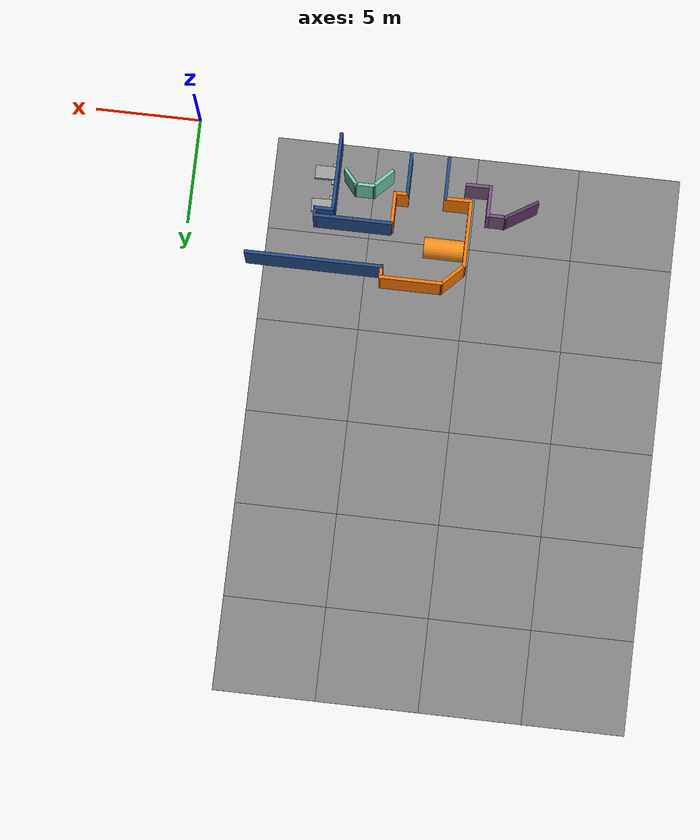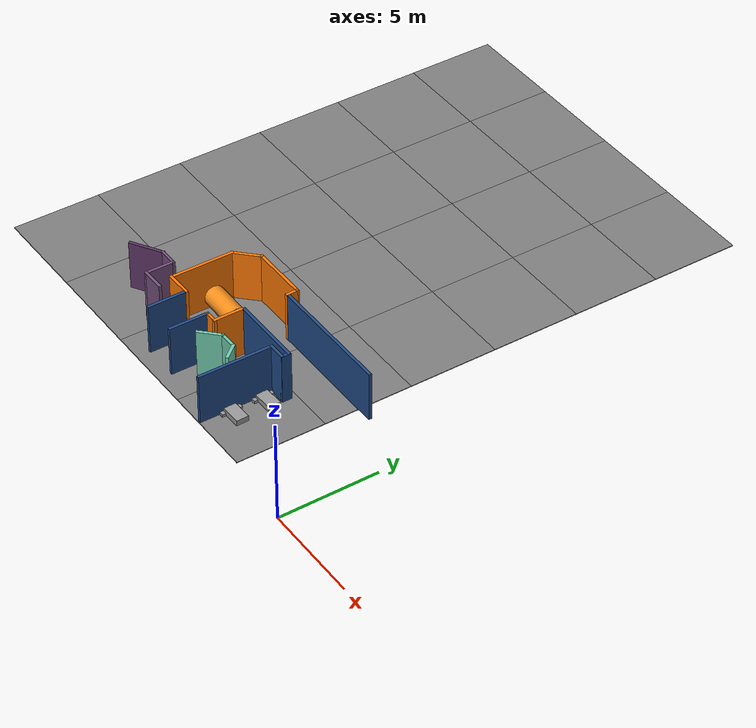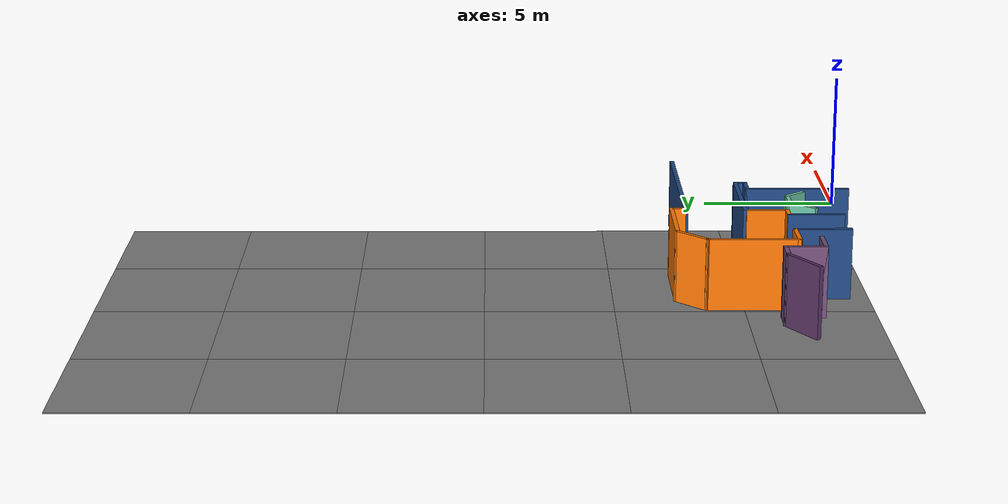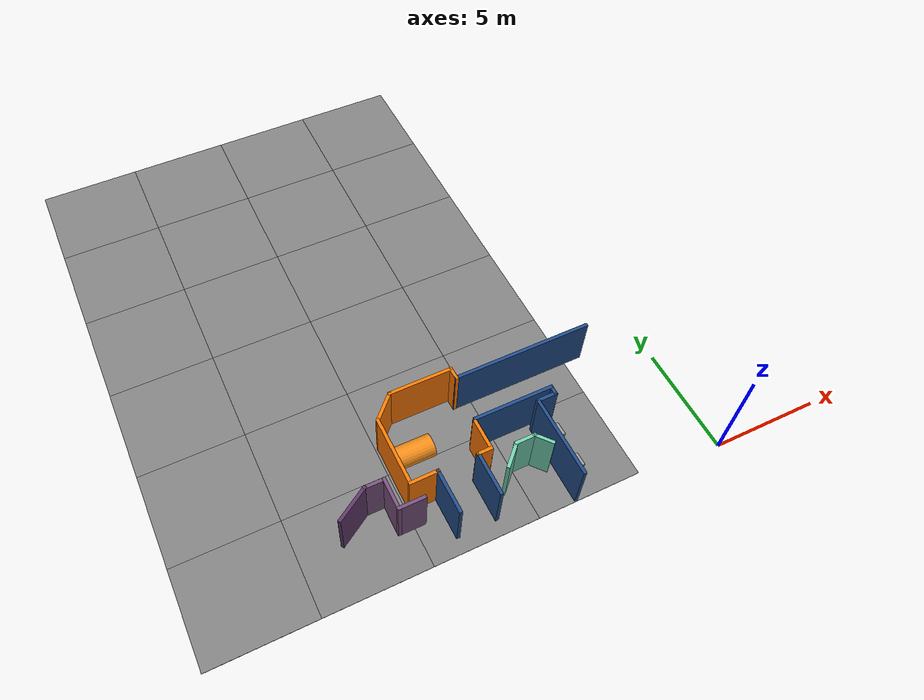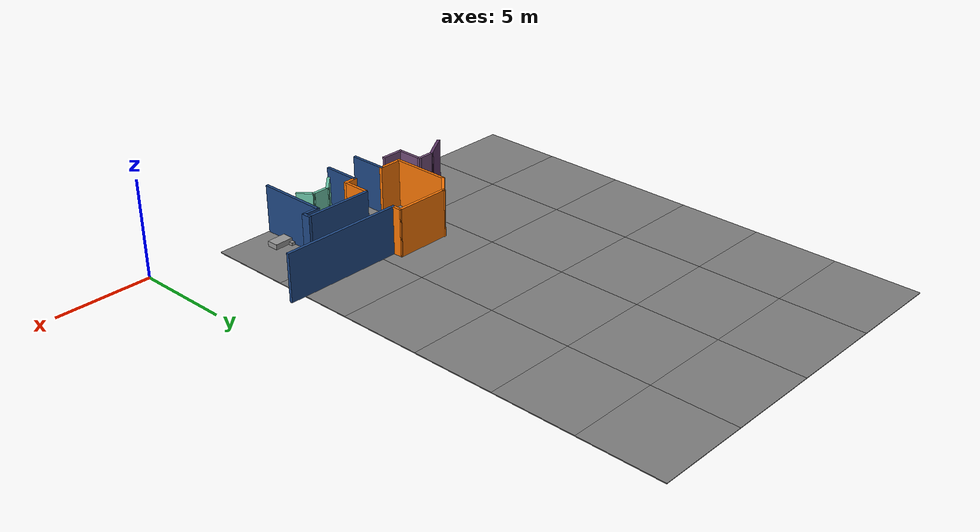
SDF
<sdf version="1.7">
 <world name="default">
  <model name="among_us_world">
   <pose>0.133216 -0.12311 0 0 -0 0</pose>
   <link name="Wall_101">
    <collision name="Wall_101_Collision">
     <geometry><box><size>3.75 0.15 2.5</size></box></geometry>
     <pose>0 0 1.25 0 -0 0</pose>
    </collision>
    <visual name="Wall_101_Visual">
     <pose>0 0 1.25 0 -0 0</pose>
     <geometry><box><size>3.75 0.15 2.5</size></box></geometry>
     <material>
      <ambient>0.12549 0.290196 0.529412 1</ambient>
      <diffuse>0.12549 0.290196 0.529412 1</diffuse>
      <specular>0.08 0.08 0.08 1</specular>
      <emissive>0 0 0 1</emissive>
      <pbr><metal><roughness>0.82</roughness><metalness>0</metalness></metal></pbr>
     </material>
     <meta><layer>0</layer></meta>
    </visual>
    <pose>-6.98451 2.43054 0 0 -0 -1.5708</pose>
   </link>
   <link name="Wall_170">
    <collision name="Wall_170_Collision">
     <geometry><box><size>0.93677 0.15 2.5</size></box></geometry>
     <pose>0 0 1.25 0 -0 0</pose>
    </collision>
    <visual name="Wall_170_Visual">
     <pose>0 0 1.25 0 -0 0</pose>
     <geometry><box><size>0.93677 0.15 2.5</size></box></geometry>
     <material>
      <ambient>0.435294 0.796078 0.67451 1</ambient>
      <diffuse>0.435294 0.796078 0.67451 1</diffuse>
      <specular>0.08 0.08 0.08 1</specular>
      <emissive>0 0 0 1</emissive>
      <pbr><metal><roughness>0.82</roughness><metalness>0</metalness></metal></pbr>
     </material>
     <meta><layer>0</layer></meta>
    </visual>
    <pose>-7.66031 2.59561 0 0 -0 2.2722</pose>
   </link>
   <link name="Wall_171">
    <collision name="Wall_171_Collision">
     <geometry><box><size>1 0.15 2.5</size></box></geometry>
     <pose>0 0 1.25 0 -0 0</pose>
    </collision>
    <visual name="Wall_171_Visual">
     <pose>0 0 1.25 0 -0 0</pose>
     <geometry><box><size>1 0.15 2.5</size></box></geometry>
     <material>
      <ambient>0.435294 0.796078 0.67451 1</ambient>
      <diffuse>0.435294 0.796078 0.67451 1</diffuse>
      <specular>0.08 0.08 0.08 1</specular>
      <emissive>0 0 0 1</emissive>
      <pbr><metal><roughness>0.82</roughness><metalness>0</metalness></metal></pbr>
     </material>
     <meta><layer>0</layer></meta>
    </visual>
    <pose>-8.33916 2.89614 0 0 -0 3.14159</pose>
   </link>
   <link name="Wall_172">
    <collision name="Wall_172_Collision">
     <geometry><box><size>1.25 0.15 2.5</size></box></geometry>
     <pose>0 0 1.25 0 -0 0</pose>
    </collision>
    <visual name="Wall_172_Visual">
     <pose>0 0 1.25 0 -0 0</pose>
     <geometry><box><size>1.25 0.15 2.5</size></box></geometry>
     <material>
      <ambient>0.435294 0.796078 0.67451 1</ambient>
      <diffuse>0.435294 0.796078 0.67451 1</diffuse>
      <specular>0.08 0.08 0.08 1</specular>
      <emissive>0 0 0 1</emissive>
      <pbr><metal><roughness>0.82</roughness><metalness>0</metalness></metal></pbr>
     </material>
     <meta><layer>0</layer></meta>
    </visual>
    <pose>-9.15307 2.50723 0 0 -0 -2.35619</pose>
   </link>
   <link name="Wall_175">
    <collision name="Wall_175_Collision">
     <geometry><box><size>2 0.15 2.5</size></box></geometry>
     <pose>0 0 1.25 0 -0 0</pose>
    </collision>
    <visual name="Wall_175_Visual">
     <pose>0 0 1.25 0 -0 0</pose>
     <geometry><box><size>2 0.15 2.5</size></box></geometry>
     <material>
      <ambient>0.12549 0.290196 0.529412 1</ambient>
      <diffuse>0.12549 0.290196 0.529412 1</diffuse>
      <specular>0.08 0.08 0.08 1</specular>
      <emissive>0 0 0 1</emissive>
      <pbr><metal><roughness>0.82</roughness><metalness>0</metalness></metal></pbr>
     </material>
     <meta><layer>0</layer></meta>
    </visual>
    <pose>-10.3611 2.17994 0 0 -0 1.5708</pose>
   </link>
   <link name="Wall_176">
    <collision name="Wall_176_Collision">
     <geometry><box><size>0.719112 0.15 2.5</size></box></geometry>
     <pose>0 0 1.25 0 -0 0</pose>
    </collision>
    <visual name="Wall_176_Visual">
     <pose>0 0 1.25 0 -0 0</pose>
     <geometry><box><size>0.719112 0.15 2.5</size></box></geometry>
     <material>
      <ambient>0.996078 0.47451 0.0196078 1</ambient>
      <diffuse>0.996078 0.47451 0.0196078 1</diffuse>
      <specular>0.08 0.08 0.08 1</specular>
      <emissive>0 0 0 1</emissive>
      <pbr><metal><roughness>0.82</roughness><metalness>0</metalness></metal></pbr>
     </material>
     <meta><layer>0</layer></meta>
    </visual>
    <pose>-10.0765 3.11832 0 0 -0 0</pose>
   </link>
   <link name="Wall_177">
    <collision name="Wall_177_Collision">
     <geometry><box><size>1.5 0.15 2.5</size></box></geometry>
     <pose>0 0 1.25 0 -0 0</pose>
    </collision>
    <visual name="Wall_177_Visual">
     <pose>0 0 1.25 0 -0 0</pose>
     <geometry><box><size>1.5 0.15 2.5</size></box></geometry>
     <material>
      <ambient>0.996078 0.47451 0.0196078 1</ambient>
      <diffuse>0.996078 0.47451 0.0196078 1</diffuse>
      <specular>0.08 0.08 0.08 1</specular>
      <emissive>0 0 0 1</emissive>
      <pbr><metal><roughness>0.82</roughness><metalness>0</metalness></metal></pbr>
     </material>
     <meta><layer>0</layer></meta>
    </visual>
    <pose>-9.79198 3.79332 0 0 -0 1.5708</pose>
   </link>
   <link name="Wall_31">
    <collision name="Wall_31_Collision">
     <geometry><box><size>6.5 0.15 2.5</size></box></geometry>
     <pose>0 0 1.25 0 -0 0</pose>
    </collision>
    <visual name="Wall_31_Visual">
     <pose>0 0 1.25 0 -0 0</pose>
     <geometry><box><size>6.5 0.15 2.5</size></box></geometry>
     <material>
      <ambient>0.12549 0.290196 0.529412 1</ambient>
      <diffuse>0.12549 0.290196 0.529412 1</diffuse>
      <specular>0.08 0.08 0.08 1</specular>
      <emissive>0 0 0 1</emissive>
      <pbr><metal><roughness>0.82</roughness><metalness>0</metalness></metal></pbr>
     </material>
     <meta><layer>0</layer></meta>
    </visual>
    <pose>-6.36249 6.66662 0 0 -0 3.14159</pose>
   </link>
   <link name="Wall_32">
    <collision name="Wall_32_Collision">
     <geometry><box><size>0.656345 0.15 2.5</size></box></geometry>
     <pose>0 0 1.25 0 -0 0</pose>
    </collision>
    <visual name="Wall_32_Visual">
     <pose>0 0 1.25 0 -0 0</pose>
     <geometry><box><size>0.656345 0.15 2.5</size></box></geometry>
     <material>
      <ambient>0.996078 0.47451 0.0196078 1</ambient>
      <diffuse>0.996078 0.47451 0.0196078 1</diffuse>
      <specular>0.08 0.08 0.08 1</specular>
      <emissive>0 0 0 1</emissive>
      <pbr><metal><roughness>0.82</roughness><metalness>0</metalness></metal></pbr>
     </material>
     <meta><layer>0</layer></meta>
    </visual>
    <pose>-9.54527 6.90412 0 0 -0 1.60153</pose>
   </link>
   <link name="Wall_33">
    <collision name="Wall_33_Collision">
     <geometry><box><size>3 0.15 2.5</size></box></geometry>
     <pose>0 0 1.25 0 -0 0</pose>
    </collision>
    <visual name="Wall_33_Visual">
     <pose>0 0 1.25 0 -0 0</pose>
     <geometry><box><size>3 0.15 2.5</size></box></geometry>
     <material>
      <ambient>0.996078 0.47451 0.0196078 1</ambient>
      <diffuse>0.996078 0.47451 0.0196078 1</diffuse>
      <specular>0.08 0.08 0.08 1</specular>
      <emissive>0 0 0 1</emissive>
      <pbr><metal><roughness>0.82</roughness><metalness>0</metalness></metal></pbr>
     </material>
     <meta><layer>0</layer></meta>
    </visual>
    <pose>-10.978 7.15717 0 0 -0 3.14159</pose>
   </link>
   <link name="Wall_34">
    <collision name="Wall_34_Collision">
     <geometry><box><size>1.5 0.15 2.5</size></box></geometry>
     <pose>0 0 1.25 0 -0 0</pose>
    </collision>
    <visual name="Wall_34_Visual">
     <pose>0 0 1.25 0 -0 0</pose>
     <geometry><box><size>1.5 0.15 2.5</size></box></geometry>
     <material>
      <ambient>0.996078 0.47451 0.0196078 1</ambient>
      <diffuse>0.996078 0.47451 0.0196078 1</diffuse>
      <specular>0.08 0.08 0.08 1</specular>
      <emissive>0 0 0 1</emissive>
      <pbr><metal><roughness>0.82</roughness><metalness>0</metalness></metal></pbr>
     </material>
     <meta><layer>0</layer></meta>
    </visual>
    <pose>-12.8803 6.67987 0 0 -0 -2.35619</pose>
   </link>
   <link name="Wall_35">
    <collision name="Wall_35_Collision">
     <geometry><box><size>3.21889 0.15 2.5</size></box></geometry>
     <pose>0 0 1.25 0 -0 0</pose>
    </collision>
    <visual name="Wall_35_Visual">
     <pose>0 0 1.25 0 -0 0</pose>
     <geometry><box><size>3.21889 0.15 2.5</size></box></geometry>
     <material>
      <ambient>0.996078 0.47451 0.0196078 1</ambient>
      <diffuse>0.996078 0.47451 0.0196078 1</diffuse>
      <specular>0.08 0.08 0.08 1</specular>
      <emissive>0 0 0 1</emissive>
      <pbr><metal><roughness>0.82</roughness><metalness>0</metalness></metal></pbr>
     </material>
     <meta><layer>0</layer></meta>
    </visual>
    <pose>-13.3576 4.66813 0 0 -0 -1.5708</pose>
   </link>
   <link name="Wall_36">
    <collision name="Wall_36_Collision">
     <geometry><box><size>1.35468 0.15 2.5</size></box></geometry>
     <pose>0 0 1.25 0 -0 0</pose>
    </collision>
    <visual name="Wall_36_Visual">
     <pose>0 0 1.25 0 -0 0</pose>
     <geometry><box><size>1.35468 0.15 2.5</size></box></geometry>
     <material>
      <ambient>0.996078 0.47451 0.0196078 1</ambient>
      <diffuse>0.996078 0.47451 0.0196078 1</diffuse>
      <specular>0.08 0.08 0.08 1</specular>
      <emissive>0 0 0 1</emissive>
      <pbr><metal><roughness>0.82</roughness><metalness>0</metalness></metal></pbr>
     </material>
     <meta><layer>0</layer></meta>
    </visual>
    <pose>-12.7556 3.12401 0 0 -0 0.009756</pose>
   </link>
   <link name="Wall_37">
    <collision name="Wall_37_Collision">
     <geometry><box><size>2.0178 0.15 2.5</size></box></geometry>
     <pose>0 0 1.25 0 -0 0</pose>
    </collision>
    <visual name="Wall_37_Visual">
     <pose>0 0 1.25 0 -0 0</pose>
     <geometry><box><size>2.0178 0.15 2.5</size></box></geometry>
     <material>
      <ambient>0.12549 0.290196 0.529412 1</ambient>
      <diffuse>0.12549 0.290196 0.529412 1</diffuse>
      <specular>0.08 0.08 0.08 1</specular>
      <emissive>0 0 0 1</emissive>
      <pbr><metal><roughness>0.82</roughness><metalness>0</metalness></metal></pbr>
     </material>
     <meta><layer>0</layer></meta>
    </visual>
    <pose>-12.1457 2.18046 0 0 -0 -1.56247</pose>
   </link>
   <link name="Wall_40">
    <collision name="Wall_40_Collision">
     <geometry><box><size>1.25 0.15 2.5</size></box></geometry>
     <pose>0 0 1.25 0 -0 0</pose>
    </collision>
    <visual name="Wall_40_Visual">
     <pose>0 0 1.25 0 -0 0</pose>
     <geometry><box><size>1.25 0.15 2.5</size></box></geometry>
     <material>
      <ambient>0.458824 0.313726 0.482353 1</ambient>
      <diffuse>0.458824 0.313726 0.482353 1</diffuse>
      <specular>0.08 0.08 0.08 1</specular>
      <emissive>0 0 0 1</emissive>
      <pbr><metal><roughness>0.82</roughness><metalness>0</metalness></metal></pbr>
     </material>
     <meta><layer>0</layer></meta>
    </visual>
    <pose>-13.6578 2.35272 0 0 -0 3.14159</pose>
   </link>
   <link name="Wall_43">
    <collision name="Wall_43_Collision">
     <geometry><box><size>1.5 0.15 2.5</size></box></geometry>
     <pose>0 0 1.25 0 -0 0</pose>
    </collision>
    <visual name="Wall_43_Visual">
     <pose>0 0 1.25 0 -0 0</pose>
     <geometry><box><size>1.5 0.15 2.5</size></box></geometry>
     <material>
      <ambient>0.458824 0.313726 0.482353 1</ambient>
      <diffuse>0.458824 0.313726 0.482353 1</diffuse>
      <specular>0.08 0.08 0.08 1</specular>
      <emissive>0 0 0 1</emissive>
      <pbr><metal><roughness>0.82</roughness><metalness>0</metalness></metal></pbr>
     </material>
     <meta><layer>0</layer></meta>
    </visual>
    <pose>-14.2078 3.02772 0 0 -0 1.5708</pose>
   </link>
   <link name="Wall_44">
    <collision name="Wall_44_Collision">
     <geometry><box><size>1 0.15 2.5</size></box></geometry>
     <pose>0 0 1.25 0 -0 0</pose>
    </collision>
    <visual name="Wall_44_Visual">
     <pose>0 0 1.25 0 -0 0</pose>
     <geometry><box><size>1 0.15 2.5</size></box></geometry>
     <material>
      <ambient>0.458824 0.313726 0.482353 1</ambient>
      <diffuse>0.458824 0.313726 0.482353 1</diffuse>
      <specular>0.08 0.08 0.08 1</specular>
      <emissive>0 0 0 1</emissive>
      <pbr><metal><roughness>0.82</roughness><metalness>0</metalness></metal></pbr>
     </material>
     <meta><layer>0</layer></meta>
    </visual>
    <pose>-14.6328 3.70272 0 0 -0 3.14159</pose>
   </link>
   <link name="Wall_45">
    <collision name="Wall_45_Collision">
     <geometry><box><size>1.76072 0.15 2.5</size></box></geometry>
     <pose>0 0 1.25 0 -0 0</pose>
    </collision>
    <visual name="Wall_45_Visual">
     <pose>0 0 1.25 0 -0 0</pose>
     <geometry><box><size>1.76072 0.15 2.5</size></box></geometry>
     <material>
      <ambient>0.360784 0.207843 0.4 1</ambient>
      <diffuse>0.360784 0.207843 0.4 1</diffuse>
      <specular>0.08 0.08 0.08 1</specular>
      <emissive>0 0 0 1</emissive>
      <pbr><metal><roughness>0.82</roughness><metalness>0</metalness></metal></pbr>
     </material>
     <meta><layer>0</layer></meta>
    </visual>
    <pose>-15.7428 3.27922 0 0 -0 -2.58786</pose>
   </link>
   <link name="Wall_96">
    <collision name="Wall_96_Collision">
     <geometry><box><size>3.70441 0.15 2.5</size></box></geometry>
     <pose>0 0 1.25 0 -0 0</pose>
    </collision>
    <visual name="Wall_96_Visual">
     <pose>0 0 1.25 0 -0 0</pose>
     <geometry><box><size>3.70441 0.15 2.5</size></box></geometry>
     <material>
      <ambient>0.12549 0.290196 0.529412 1</ambient>
      <diffuse>0.12549 0.290196 0.529412 1</diffuse>
      <specular>0.08 0.08 0.08 1</specular>
      <emissive>0 0 0 1</emissive>
      <pbr><metal><roughness>0.82</roughness><metalness>0</metalness></metal></pbr>
     </material>
     <meta><layer>0</layer></meta>
    </visual>
    <pose>-7.9573 4.58054 0 0 -0 0</pose>
   </link>
   <link name="Wall_97">
    <collision name="Wall_97_Collision">
     <geometry><box><size>0.5 0.15 2.5</size></box></geometry>
     <pose>0 0 1.25 0 -0 0</pose>
    </collision>
    <visual name="Wall_97_Visual">
     <pose>0 0 1.25 0 -0 0</pose>
     <geometry><box><size>0.5 0.15 2.5</size></box></geometry>
     <material>
      <ambient>0.12549 0.290196 0.529412 1</ambient>
      <diffuse>0.12549 0.290196 0.529412 1</diffuse>
      <specular>0.08 0.08 0.08 1</specular>
      <emissive>0 0 0 1</emissive>
      <pbr><metal><roughness>0.82</roughness><metalness>0</metalness></metal></pbr>
     </material>
     <meta><layer>0</layer></meta>
    </visual>
    <pose>-6.16454 4.40555 0 0 -0 -1.5708</pose>
   </link>
   <link name="Wall_98">
    <collision name="Wall_98_Collision">
     <geometry><box><size>0.954414 0.15 2.5</size></box></geometry>
     <pose>0 0 1.25 0 -0 0</pose>
    </collision>
    <visual name="Wall_98_Visual">
     <pose>0 0 1.25 0 -0 0</pose>
     <geometry><box><size>0.954414 0.15 2.5</size></box></geometry>
     <material>
      <ambient>0.12549 0.290196 0.529412 1</ambient>
      <diffuse>0.12549 0.290196 0.529412 1</diffuse>
      <specular>0.08 0.08 0.08 1</specular>
      <emissive>0 0 0 1</emissive>
      <pbr><metal><roughness>0.82</roughness><metalness>0</metalness></metal></pbr>
     </material>
     <meta><layer>0</layer></meta>
    </visual>
    <pose>-6.5823 4.23055 0 0 -0 3.14159</pose>
   </link>
   <static>1</static>
  </model>
  <model name="orange_cylinder_clone">
   <link name="link_0">
    <inertial>
     <mass>1</mass>
     <inertia><ixx>0.145833</ixx><ixy>0</ixy><ixz>0</ixz><iyy>0.145833</iyy><iyz>0</iyz><izz>0.125</izz></inertia>
    </inertial>
    <visual name="visual">
     <geometry><cylinder><radius>0.5</radius><length>1.88443</length></cylinder></geometry>
     <material>
      <lighting>1</lighting>
      <script><uri>file://media/materials/scripts/gazebo.material</uri><name>Gazebo/Orange</name></script>
      <shader type="pixel"><normal_map>__default__</normal_map></shader>
      <ambient>1 0.509 0.047 1</ambient>
      <diffuse>1 0.509 0.047 1</diffuse>
      <specular>0.08 0.08 0.08 1</specular>
      <emissive>0 0 0 1</emissive>
     </material>
    </visual>
    <collision name="collision">
     <geometry><cylinder><radius>0.5</radius><length>1.88443</length></cylinder></geometry>
     <surface>
      <friction>
       <ode><mu>1</mu><mu2>1</mu2><fdir1>0 0 0</fdir1><slip1>0</slip1><slip2>0</slip2></ode>
       <torsional>
        <coefficient>1</coefficient>
        <patch_radius>0</patch_radius>
        <surface_radius>0</surface_radius>
        <use_patch_radius>1</use_patch_radius>
        <ode><slip>0</slip></ode>
       </torsional>
      </friction>
      <bounce><restitution_coefficient>0</restitution_coefficient><threshold>1e+06</threshold></bounce>
      <contact>
       <collide_without_contact>0</collide_without_contact>
       <collide_without_contact_bitmask>1</collide_without_contact_bitmask>
       <collide_bitmask>1</collide_bitmask>
       <ode>
        <soft_cfm>0</soft_cfm>
        <soft_erp>0.2</soft_erp>
        <kp>1e+13</kp>
        <kd>1</kd>
        <max_vel>0.01</max_vel>
        <min_depth>0</min_depth>
       </ode>
       <bullet>
        <split_impulse>1</split_impulse>
        <split_impulse_penetration_threshold>-0.01</split_impulse_penetration_threshold>
        <soft_cfm>0</soft_cfm>
        <soft_erp>0.2</soft_erp>
        <kp>1e+13</kp>
        <kd>1</kd>
       </bullet>
      </contact>
     </surface>
    </collision>
   </link>
   <static>0</static>
   <pose>-12.1912 5.04645 0.590071 -1.5708 1.55143 -1.57632</pose>
  </model>
  <model name="asphalt_tile_04_00">
   <static>1</static>
   <pose>-20.600 2.600 -0.020 0 -0 0</pose>
   <link name="link">
    <collision name="collision"><geometry><box><size>4.800 4.400 0.040</size></box></geometry></collision>
    <visual name="visual">
     <cast_shadows>0</cast_shadows>
     <geometry><box><size>4.800 4.400 0.040</size></box></geometry>
     <material>
      <ambient>0.5 0.5 0.5 1</ambient>
      <diffuse>0.5 0.5 0.5 1</diffuse>
      <specular>0.2 0.2 0.2 1</specular>
      <emissive>0 0 0 1</emissive>
      <pbr>
       <metal>
        <albedo_map>model://asphalt_plane/materials/textures/tarmac.png</albedo_map>
        <roughness>0.85</roughness>
        <metalness>0</metalness>
       </metal>
      </pbr>
     </material>
    </visual>
   </link>
  </model>
  <model name="asphalt_tile_04_01">
   <static>1</static>
   <pose>-15.800 2.600 -0.020 0 -0 0</pose>
   <link name="link">
    <collision name="collision"><geometry><box><size>4.800 4.400 0.040</size></box></geometry></collision>
    <visual name="visual">
     <cast_shadows>0</cast_shadows>
     <geometry><box><size>4.800 4.400 0.040</size></box></geometry>
     <material>
      <ambient>0.5 0.5 0.5 1</ambient>
      <diffuse>0.5 0.5 0.5 1</diffuse>
      <specular>0.2 0.2 0.2 1</specular>
      <emissive>0 0 0 1</emissive>
      <pbr>
       <metal>
        <albedo_map>model://asphalt_plane/materials/textures/tarmac.png</albedo_map>
        <roughness>0.85</roughness>
        <metalness>0</metalness>
       </metal>
      </pbr>
     </material>
    </visual>
   </link>
  </model>
  <model name="asphalt_tile_04_02">
   <static>1</static>
   <pose>-11.000 2.600 -0.020 0 -0 0</pose>
   <link name="link">
    <collision name="collision"><geometry><box><size>4.800 4.400 0.040</size></box></geometry></collision>
    <visual name="visual">
     <cast_shadows>0</cast_shadows>
     <geometry><box><size>4.800 4.400 0.040</size></box></geometry>
     <material>
      <ambient>0.5 0.5 0.5 1</ambient>
      <diffuse>0.5 0.5 0.5 1</diffuse>
      <specular>0.2 0.2 0.2 1</specular>
      <emissive>0 0 0 1</emissive>
      <pbr>
       <metal>
        <albedo_map>model://asphalt_plane/materials/textures/tarmac.png</albedo_map>
        <roughness>0.85</roughness>
        <metalness>0</metalness>
       </metal>
      </pbr>
     </material>
    </visual>
   </link>
  </model>
  <model name="asphalt_tile_04_03">
   <static>1</static>
   <pose>-6.200 2.600 -0.020 0 -0 0</pose>
   <link name="link">
    <collision name="collision"><geometry><box><size>4.800 4.400 0.040</size></box></geometry></collision>
    <visual name="visual">
     <cast_shadows>0</cast_shadows>
     <geometry><box><size>4.800 4.400 0.040</size></box></geometry>
     <material>
      <ambient>0.5 0.5 0.5 1</ambient>
      <diffuse>0.5 0.5 0.5 1</diffuse>
      <specular>0.2 0.2 0.2 1</specular>
      <emissive>0 0 0 1</emissive>
      <pbr>
       <metal>
        <albedo_map>model://asphalt_plane/materials/textures/tarmac.png</albedo_map>
        <roughness>0.85</roughness>
        <metalness>0</metalness>
       </metal>
      </pbr>
     </material>
    </visual>
   </link>
  </model>
  <model name="asphalt_tile_05_00">
   <static>1</static>
   <pose>-20.600 7.000 -0.020 0 -0 0</pose>
   <link name="link">
    <collision name="collision"><geometry><box><size>4.800 4.400 0.040</size></box></geometry></collision>
    <visual name="visual">
     <cast_shadows>0</cast_shadows>
     <geometry><box><size>4.800 4.400 0.040</size></box></geometry>
     <material>
      <ambient>0.5 0.5 0.5 1</ambient>
      <diffuse>0.5 0.5 0.5 1</diffuse>
      <specular>0.2 0.2 0.2 1</specular>
      <emissive>0 0 0 1</emissive>
      <pbr>
       <metal>
        <albedo_map>model://asphalt_plane/materials/textures/tarmac.png</albedo_map>
        <roughness>0.85</roughness>
        <metalness>0</metalness>
       </metal>
      </pbr>
     </material>
    </visual>
   </link>
  </model>
  <model name="asphalt_tile_05_01">
   <static>1</static>
   <pose>-15.800 7.000 -0.020 0 -0 0</pose>
   <link name="link">
    <collision name="collision"><geometry><box><size>4.800 4.400 0.040</size></box></geometry></collision>
    <visual name="visual">
     <cast_shadows>0</cast_shadows>
     <geometry><box><size>4.800 4.400 0.040</size></box></geometry>
     <material>
      <ambient>0.5 0.5 0.5 1</ambient>
      <diffuse>0.5 0.5 0.5 1</diffuse>
      <specular>0.2 0.2 0.2 1</specular>
      <emissive>0 0 0 1</emissive>
      <pbr>
       <metal>
        <albedo_map>model://asphalt_plane/materials/textures/tarmac.png</albedo_map>
        <roughness>0.85</roughness>
        <metalness>0</metalness>
       </metal>
      </pbr>
     </material>
    </visual>
   </link>
  </model>
  <model name="asphalt_tile_05_02">
   <static>1</static>
   <pose>-11.000 7.000 -0.020 0 -0 0</pose>
   <link name="link">
    <collision name="collision"><geometry><box><size>4.800 4.400 0.040</size></box></geometry></collision>
    <visual name="visual">
     <cast_shadows>0</cast_shadows>
     <geometry><box><size>4.800 4.400 0.040</size></box></geometry>
     <material>
      <ambient>0.5 0.5 0.5 1</ambient>
      <diffuse>0.5 0.5 0.5 1</diffuse>
      <specular>0.2 0.2 0.2 1</specular>
      <emissive>0 0 0 1</emissive>
      <pbr>
       <metal>
        <albedo_map>model://asphalt_plane/materials/textures/tarmac.png</albedo_map>
        <roughness>0.85</roughness>
        <metalness>0</metalness>
       </metal>
      </pbr>
     </material>
    </visual>
   </link>
  </model>
  <model name="asphalt_tile_05_03">
   <static>1</static>
   <pose>-6.200 7.000 -0.020 0 -0 0</pose>
   <link name="link">
    <collision name="collision"><geometry><box><size>4.800 4.400 0.040</size></box></geometry></collision>
    <visual name="visual">
     <cast_shadows>0</cast_shadows>
     <geometry><box><size>4.800 4.400 0.040</size></box></geometry>
     <material>
      <ambient>0.5 0.5 0.5 1</ambient>
      <diffuse>0.5 0.5 0.5 1</diffuse>
      <specular>0.2 0.2 0.2 1</specular>
      <emissive>0 0 0 1</emissive>
      <pbr>
       <metal>
        <albedo_map>model://asphalt_plane/materials/textures/tarmac.png</albedo_map>
        <roughness>0.85</roughness>
        <metalness>0</metalness>
       </metal>
      </pbr>
     </material>
    </visual>
   </link>
  </model>
  <model name="asphalt_tile_06_00">
   <static>1</static>
   <pose>-20.600 11.400 -0.020 0 -0 0</pose>
   <link name="link">
    <collision name="collision"><geometry><box><size>4.800 4.400 0.040</size></box></geometry></collision>
    <visual name="visual">
     <cast_shadows>0</cast_shadows>
     <geometry><box><size>4.800 4.400 0.040</size></box></geometry>
     <material>
      <ambient>0.5 0.5 0.5 1</ambient>
      <diffuse>0.5 0.5 0.5 1</diffuse>
      <specular>0.2 0.2 0.2 1</specular>
      <emissive>0 0 0 1</emissive>
      <pbr>
       <metal>
        <albedo_map>model://asphalt_plane/materials/textures/tarmac.png</albedo_map>
        <roughness>0.85</roughness>
        <metalness>0</metalness>
       </metal>
      </pbr>
     </material>
    </visual>
   </link>
  </model>
  <model name="asphalt_tile_06_01">
   <static>1</static>
   <pose>-15.800 11.400 -0.020 0 -0 0</pose>
   <link name="link">
    <collision name="collision"><geometry><box><size>4.800 4.400 0.040</size></box></geometry></collision>
    <visual name="visual">
     <cast_shadows>0</cast_shadows>
     <geometry><box><size>4.800 4.400 0.040</size></box></geometry>
     <material>
      <ambient>0.5 0.5 0.5 1</ambient>
      <diffuse>0.5 0.5 0.5 1</diffuse>
      <specular>0.2 0.2 0.2 1</specular>
      <emissive>0 0 0 1</emissive>
      <pbr>
       <metal>
        <albedo_map>model://asphalt_plane/materials/textures/tarmac.png</albedo_map>
        <roughness>0.85</roughness>
        <metalness>0</metalness>
       </metal>
      </pbr>
     </material>
    </visual>
   </link>
  </model>
  <model name="asphalt_tile_06_02">
   <static>1</static>
   <pose>-11.000 11.400 -0.020 0 -0 0</pose>
   <link name="link">
    <collision name="collision"><geometry><box><size>4.800 4.400 0.040</size></box></geometry></collision>
    <visual name="visual">
     <cast_shadows>0</cast_shadows>
     <geometry><box><size>4.800 4.400 0.040</size></box></geometry>
     <material>
      <ambient>0.5 0.5 0.5 1</ambient>
      <diffuse>0.5 0.5 0.5 1</diffuse>
      <specular>0.2 0.2 0.2 1</specular>
      <emissive>0 0 0 1</emissive>
      <pbr>
       <metal>
        <albedo_map>model://asphalt_plane/materials/textures/tarmac.png</albedo_map>
        <roughness>0.85</roughness>
        <metalness>0</metalness>
       </metal>
      </pbr>
     </material>
    </visual>
   </link>
  </model>
  <model name="asphalt_tile_06_03">
   <static>1</static>
   <pose>-6.200 11.400 -0.020 0 -0 0</pose>
   <link name="link">
    <collision name="collision"><geometry><box><size>4.800 4.400 0.040</size></box></geometry></collision>
    <visual name="visual">
     <cast_shadows>0</cast_shadows>
     <geometry><box><size>4.800 4.400 0.040</size></box></geometry>
     <material>
      <ambient>0.5 0.5 0.5 1</ambient>
      <diffuse>0.5 0.5 0.5 1</diffuse>
      <specular>0.2 0.2 0.2 1</specular>
      <emissive>0 0 0 1</emissive>
      <pbr>
       <metal>
        <albedo_map>model://asphalt_plane/materials/textures/tarmac.png</albedo_map>
        <roughness>0.85</roughness>
        <metalness>0</metalness>
       </metal>
      </pbr>
     </material>
    </visual>
   </link>
  </model>
  <model name="asphalt_tile_07_00">
   <static>1</static>
   <pose>-20.600 15.800 -0.020 0 -0 0</pose>
   <link name="link">
    <collision name="collision"><geometry><box><size>4.800 4.400 0.040</size></box></geometry></collision>
    <visual name="visual">
     <cast_shadows>0</cast_shadows>
     <geometry><box><size>4.800 4.400 0.040</size></box></geometry>
     <material>
      <ambient>0.5 0.5 0.5 1</ambient>
      <diffuse>0.5 0.5 0.5 1</diffuse>
      <specular>0.2 0.2 0.2 1</specular>
      <emissive>0 0 0 1</emissive>
      <pbr>
       <metal>
        <albedo_map>model://asphalt_plane/materials/textures/tarmac.png</albedo_map>
        <roughness>0.85</roughness>
        <metalness>0</metalness>
       </metal>
      </pbr>
     </material>
    </visual>
   </link>
  </model>
  <model name="asphalt_tile_07_01">
   <static>1</static>
   <pose>-15.800 15.800 -0.020 0 -0 0</pose>
   <link name="link">
    <collision name="collision"><geometry><box><size>4.800 4.400 0.040</size></box></geometry></collision>
    <visual name="visual">
     <cast_shadows>0</cast_shadows>
     <geometry><box><size>4.800 4.400 0.040</size></box></geometry>
     <material>
      <ambient>0.5 0.5 0.5 1</ambient>
      <diffuse>0.5 0.5 0.5 1</diffuse>
      <specular>0.2 0.2 0.2 1</specular>
      <emissive>0 0 0 1</emissive>
      <pbr>
       <metal>
        <albedo_map>model://asphalt_plane/materials/textures/tarmac.png</albedo_map>
        <roughness>0.85</roughness>
        <metalness>0</metalness>
       </metal>
      </pbr>
     </material>
    </visual>
   </link>
  </model>
  <model name="asphalt_tile_07_02">
   <static>1</static>
   <pose>-11.000 15.800 -0.020 0 -0 0</pose>
   <link name="link">
    <collision name="collision"><geometry><box><size>4.800 4.400 0.040</size></box></geometry></collision>
    <visual name="visual">
     <cast_shadows>0</cast_shadows>
     <geometry><box><size>4.800 4.400 0.040</size></box></geometry>
     <material>
      <ambient>0.5 0.5 0.5 1</ambient>
      <diffuse>0.5 0.5 0.5 1</diffuse>
      <specular>0.2 0.2 0.2 1</specular>
      <emissive>0 0 0 1</emissive>
      <pbr>
       <metal>
        <albedo_map>model://asphalt_plane/materials/textures/tarmac.png</albedo_map>
        <roughness>0.85</roughness>
        <metalness>0</metalness>
       </metal>
      </pbr>
     </material>
    </visual>
   </link>
  </model>
  <model name="asphalt_tile_07_03">
   <static>1</static>
   <pose>-6.200 15.800 -0.020 0 -0 0</pose>
   <link name="link">
    <collision name="collision"><geometry><box><size>4.800 4.400 0.040</size></box></geometry></collision>
    <visual name="visual">
     <cast_shadows>0</cast_shadows>
     <geometry><box><size>4.800 4.400 0.040</size></box></geometry>
     <material>
      <ambient>0.5 0.5 0.5 1</ambient>
      <diffuse>0.5 0.5 0.5 1</diffuse>
      <specular>0.2 0.2 0.2 1</specular>
      <emissive>0 0 0 1</emissive>
      <pbr>
       <metal>
        <albedo_map>model://asphalt_plane/materials/textures/tarmac.png</albedo_map>
        <roughness>0.85</roughness>
        <metalness>0</metalness>
       </metal>
      </pbr>
     </material>
    </visual>
   </link>
  </model>
  <model name="asphalt_tile_08_00">
   <static>1</static>
   <pose>-20.600 20.200 -0.020 0 -0 0</pose>
   <link name="link">
    <collision name="collision"><geometry><box><size>4.800 4.400 0.040</size></box></geometry></collision>
    <visual name="visual">
     <cast_shadows>0</cast_shadows>
     <geometry><box><size>4.800 4.400 0.040</size></box></geometry>
     <material>
      <ambient>0.5 0.5 0.5 1</ambient>
      <diffuse>0.5 0.5 0.5 1</diffuse>
      <specular>0.2 0.2 0.2 1</specular>
      <emissive>0 0 0 1</emissive>
      <pbr>
       <metal>
        <albedo_map>model://asphalt_plane/materials/textures/tarmac.png</albedo_map>
        <roughness>0.85</roughness>
        <metalness>0</metalness>
       </metal>
      </pbr>
     </material>
    </visual>
   </link>
  </model>
  <model name="asphalt_tile_08_01">
   <static>1</static>
   <pose>-15.800 20.200 -0.020 0 -0 0</pose>
   <link name="link">
    <collision name="collision"><geometry><box><size>4.800 4.400 0.040</size></box></geometry></collision>
    <visual name="visual">
     <cast_shadows>0</cast_shadows>
     <geometry><box><size>4.800 4.400 0.040</size></box></geometry>
     <material>
      <ambient>0.5 0.5 0.5 1</ambient>
      <diffuse>0.5 0.5 0.5 1</diffuse>
      <specular>0.2 0.2 0.2 1</specular>
      <emissive>0 0 0 1</emissive>
      <pbr>
       <metal>
        <albedo_map>model://asphalt_plane/materials/textures/tarmac.png</albedo_map>
        <roughness>0.85</roughness>
        <metalness>0</metalness>
       </metal>
      </pbr>
     </material>
    </visual>
   </link>
  </model>
  <model name="asphalt_tile_08_02">
   <static>1</static>
   <pose>-11.000 20.200 -0.020 0 -0 0</pose>
   <link name="link">
    <collision name="collision"><geometry><box><size>4.800 4.400 0.040</size></box></geometry></collision>
    <visual name="visual">
     <cast_shadows>0</cast_shadows>
     <geometry><box><size>4.800 4.400 0.040</size></box></geometry>
     <material>
      <ambient>0.5 0.5 0.5 1</ambient>
      <diffuse>0.5 0.5 0.5 1</diffuse>
      <specular>0.2 0.2 0.2 1</specular>
      <emissive>0 0 0 1</emissive>
      <pbr>
       <metal>
        <albedo_map>model://asphalt_plane/materials/textures/tarmac.png</albedo_map>
        <roughness>0.85</roughness>
        <metalness>0</metalness>
       </metal>
      </pbr>
     </material>
    </visual>
   </link>
  </model>
  <model name="asphalt_tile_08_03">
   <static>1</static>
   <pose>-6.200 20.200 -0.020 0 -0 0</pose>
   <link name="link">
    <collision name="collision"><geometry><box><size>4.800 4.400 0.040</size></box></geometry></collision>
    <visual name="visual">
     <cast_shadows>0</cast_shadows>
     <geometry><box><size>4.800 4.400 0.040</size></box></geometry>
     <material>
      <ambient>0.5 0.5 0.5 1</ambient>
      <diffuse>0.5 0.5 0.5 1</diffuse>
      <specular>0.2 0.2 0.2 1</specular>
      <emissive>0 0 0 1</emissive>
      <pbr>
       <metal>
        <albedo_map>model://asphalt_plane/materials/textures/tarmac.png</albedo_map>
        <roughness>0.85</roughness>
        <metalness>0</metalness>
       </metal>
      </pbr>
     </material>
    </visual>
   </link>
  </model>
  <model name="asphalt_tile_09_00">
   <static>1</static>
   <pose>-20.600 24.600 -0.020 0 -0 0</pose>
   <link name="link">
    <collision name="collision"><geometry><box><size>4.800 4.400 0.040</size></box></geometry></collision>
    <visual name="visual">
     <cast_shadows>0</cast_shadows>
     <geometry><box><size>4.800 4.400 0.040</size></box></geometry>
     <material>
      <ambient>0.5 0.5 0.5 1</ambient>
      <diffuse>0.5 0.5 0.5 1</diffuse>
      <specular>0.2 0.2 0.2 1</specular>
      <emissive>0 0 0 1</emissive>
      <pbr>
       <metal>
        <albedo_map>model://asphalt_plane/materials/textures/tarmac.png</albedo_map>
        <roughness>0.85</roughness>
        <metalness>0</metalness>
       </metal>
      </pbr>
     </material>
    </visual>
   </link>
  </model>
  <model name="asphalt_tile_09_01">
   <static>1</static>
   <pose>-15.800 24.600 -0.020 0 -0 0</pose>
   <link name="link">
    <collision name="collision"><geometry><box><size>4.800 4.400 0.040</size></box></geometry></collision>
    <visual name="visual">
     <cast_shadows>0</cast_shadows>
     <geometry><box><size>4.800 4.400 0.040</size></box></geometry>
     <material>
      <ambient>0.5 0.5 0.5 1</ambient>
      <diffuse>0.5 0.5 0.5 1</diffuse>
      <specular>0.2 0.2 0.2 1</specular>
      <emissive>0 0 0 1</emissive>
      <pbr>
       <metal>
        <albedo_map>model://asphalt_plane/materials/textures/tarmac.png</albedo_map>
        <roughness>0.85</roughness>
        <metalness>0</metalness>
       </metal>
      </pbr>
     </material>
    </visual>
   </link>
  </model>
  <model name="asphalt_tile_09_02">
   <static>1</static>
   <pose>-11.000 24.600 -0.020 0 -0 0</pose>
   <link name="link">
    <collision name="collision"><geometry><box><size>4.800 4.400 0.040</size></box></geometry></collision>
    <visual name="visual">
     <cast_shadows>0</cast_shadows>
     <geometry><box><size>4.800 4.400 0.040</size></box></geometry>
     <material>
      <ambient>0.5 0.5 0.5 1</ambient>
      <diffuse>0.5 0.5 0.5 1</diffuse>
      <specular>0.2 0.2 0.2 1</specular>
      <emissive>0 0 0 1</emissive>
      <pbr>
       <metal>
        <albedo_map>model://asphalt_plane/materials/textures/tarmac.png</albedo_map>
        <roughness>0.85</roughness>
        <metalness>0</metalness>
       </metal>
      </pbr>
     </material>
    </visual>
   </link>
  </model>
  <model name="asphalt_tile_09_03">
   <static>1</static>
   <pose>-6.200 24.600 -0.020 0 -0 0</pose>
   <link name="link">
    <collision name="collision"><geometry><box><size>4.800 4.400 0.040</size></box></geometry></collision>
    <visual name="visual">
     <cast_shadows>0</cast_shadows>
     <geometry><box><size>4.800 4.400 0.040</size></box></geometry>
     <material>
      <ambient>0.5 0.5 0.5 1</ambient>
      <diffuse>0.5 0.5 0.5 1</diffuse>
      <specular>0.2 0.2 0.2 1</specular>
      <emissive>0 0 0 1</emissive>
      <pbr>
       <metal>
        <albedo_map>model://asphalt_plane/materials/textures/tarmac.png</albedo_map>
        <roughness>0.85</roughness>
        <metalness>0</metalness>
       </metal>
      </pbr>
     </material>
    </visual>
   </link>
  </model>
  <model name="bed">
   <link name="link_1">
    <inertial>
     <mass>0.166557</mass>
     <inertia>
      <ixx>0.00618823</ixx>
      <ixy>0</ixy>
      <ixz>0</ixz>
      <iyy>0.0149173</iyy>
      <iyz>0</iyz>
      <izz>0.0190304</izz>
     </inertia>
    </inertial>
    <pose>0.268517 -0.007523 0.053425 0 -0 0</pose>
    <visual name="visual">
     <geometry><box><size>1 0.609172 0.273416</size></box></geometry>
     <material>
      <lighting>1</lighting>
      <script><uri>file://media/materials/scripts/gazebo.material</uri><name>Gazebo/Grey</name></script>
      <shader type="pixel"><normal_map>__default__</normal_map></shader>
      <ambient>0.42 0.43 0.42 1</ambient>
      <diffuse>0.42 0.43 0.42 1</diffuse>
      <specular>0.08 0.08 0.08 1</specular>
      <emissive>0 0 0 1</emissive>
     </material>
    </visual>
    <collision name="collision">
     <geometry><box><size>1 0.609172 0.273416</size></box></geometry>
     <surface>
      <friction>
       <ode><mu>1</mu><mu2>1</mu2><fdir1>0 0 0</fdir1><slip1>0</slip1><slip2>0</slip2></ode>
       <torsional>
        <coefficient>1</coefficient>
        <patch_radius>0</patch_radius>
        <surface_radius>0</surface_radius>
        <use_patch_radius>1</use_patch_radius>
        <ode><slip>0</slip></ode>
       </torsional>
      </friction>
      <bounce><restitution_coefficient>0</restitution_coefficient><threshold>1e+06</threshold></bounce>
      <contact>
       <collide_without_contact>0</collide_without_contact>
       <collide_without_contact_bitmask>1</collide_without_contact_bitmask>
       <collide_bitmask>1</collide_bitmask>
       <ode>
        <soft_cfm>0</soft_cfm>
        <soft_erp>0.2</soft_erp>
        <kp>1e+13</kp>
        <kd>1</kd>
        <max_vel>0.01</max_vel>
        <min_depth>0</min_depth>
       </ode>
       <bullet>
        <split_impulse>1</split_impulse>
        <split_impulse_penetration_threshold>-0.01</split_impulse_penetration_threshold>
        <soft_cfm>0</soft_cfm>
        <soft_erp>0.2</soft_erp>
        <kp>1e+13</kp>
        <kd>1</kd>
       </bullet>
      </contact>
     </surface>
    </collision>
   </link>
   <link name="link_2">
    <inertial>
     <mass>0.00661892</mass>
     <inertia>
      <ixx>3.651e-05</ixx>
      <ixy>0</ixy>
      <ixz>0</ixz>
      <iyy>3.722e-05</iyy>
      <iyz>0</iyz>
      <izz>4.631e-05</izz>
     </inertia>
    </inertial>
    <pose>-0.144333 -0.400103 -0.02691 0 -0 0</pose>
    <visual name="visual">
     <geometry><box><size>0.206441 0.203314 0.157681</size></box></geometry>
     <material>
      <lighting>1</lighting>
      <script><uri>file://media/materials/scripts/gazebo.material</uri><name>Gazebo/Grey</name></script>
      <shader type="pixel"><normal_map>__default__</normal_map></shader>
      <ambient>0.42 0.43 0.42 1</ambient>
      <diffuse>0.42 0.43 0.42 1</diffuse>
      <specular>0.08 0.08 0.08 1</specular>
      <emissive>0 0 0 1</emissive>
     </material>
    </visual>
    <collision name="collision">
     <geometry><box><size>0.206441 0.203314 0.157681</size></box></geometry>
     <surface>
      <friction>
       <ode><mu>1</mu><mu2>1</mu2><fdir1>0 0 0</fdir1><slip1>0</slip1><slip2>0</slip2></ode>
       <torsional>
        <coefficient>1</coefficient>
        <patch_radius>0</patch_radius>
        <surface_radius>0</surface_radius>
        <use_patch_radius>1</use_patch_radius>
        <ode><slip>0</slip></ode>
       </torsional>
      </friction>
      <bounce><restitution_coefficient>0</restitution_coefficient><threshold>1e+06</threshold></bounce>
      <contact>
       <collide_without_contact>0</collide_without_contact>
       <collide_without_contact_bitmask>1</collide_without_contact_bitmask>
       <collide_bitmask>1</collide_bitmask>
       <ode>
        <soft_cfm>0</soft_cfm>
        <soft_erp>0.2</soft_erp>
        <kp>1e+13</kp>
        <kd>1</kd>
        <max_vel>0.01</max_vel>
        <min_depth>0</min_depth>
       </ode>
       <bullet>
        <split_impulse>1</split_impulse>
        <split_impulse_penetration_threshold>-0.01</split_impulse_penetration_threshold>
        <soft_cfm>0</soft_cfm>
        <soft_erp>0.2</soft_erp>
        <kp>1e+13</kp>
        <kd>1</kd>
       </bullet>
      </contact>
     </surface>
    </collision>
   </link>
   <link name="link_2_clone">
    <inertial>
     <mass>0.00661892</mass>
     <inertia>
      <ixx>3.651e-05</ixx>
      <ixy>0</ixy>
      <ixz>0</ixz>
      <iyy>3.722e-05</iyy>
      <iyz>0</iyz>
      <izz>4.631e-05</izz>
     </inertia>
    </inertial>
    <pose>-0.124183 0.407627 -0.026515 0 -0 0</pose>
    <visual name="visual">
     <geometry><box><size>0.206441 0.203314 0.157681</size></box></geometry>
     <material>
      <lighting>1</lighting>
      <script><uri>file://media/materials/scripts/gazebo.material</uri><name>Gazebo/Grey</name></script>
      <shader type="pixel"><normal_map>__default__</normal_map></shader>
      <ambient>0.42 0.43 0.42 1</ambient>
      <diffuse>0.42 0.43 0.42 1</diffuse>
      <specular>0.08 0.08 0.08 1</specular>
      <emissive>0 0 0 1</emissive>
     </material>
    </visual>
    <collision name="collision">
     <geometry><box><size>0.206441 0.203314 0.157681</size></box></geometry>
     <surface>
      <friction>
       <ode><mu>1</mu><mu2>1</mu2><fdir1>0 0 0</fdir1><slip1>0</slip1><slip2>0</slip2></ode>
       <torsional>
        <coefficient>1</coefficient>
        <patch_radius>0</patch_radius>
        <surface_radius>0</surface_radius>
        <use_patch_radius>1</use_patch_radius>
        <ode><slip>0</slip></ode>
       </torsional>
      </friction>
      <bounce><restitution_coefficient>0</restitution_coefficient><threshold>1e+06</threshold></bounce>
      <contact>
       <collide_without_contact>0</collide_without_contact>
       <collide_without_contact_bitmask>1</collide_without_contact_bitmask>
       <collide_bitmask>1</collide_bitmask>
       <ode>
        <soft_cfm>0</soft_cfm>
        <soft_erp>0.2</soft_erp>
        <kp>1e+13</kp>
        <kd>1</kd>
        <max_vel>0.01</max_vel>
        <min_depth>0</min_depth>
       </ode>
       <bullet>
        <split_impulse>1</split_impulse>
        <split_impulse_penetration_threshold>-0.01</split_impulse_penetration_threshold>
        <soft_cfm>0</soft_cfm>
        <soft_erp>0.2</soft_erp>
        <kp>1e+13</kp>
        <kd>1</kd>
       </bullet>
      </contact>
     </surface>
    </collision>
   </link>
   <static>1</static>
   <pose>-6.50619 3.49112 0.093278 1.6e-05 -0 0.037709</pose>
  </model>
  <model name="bed_clone">
   <link name="link_1">
    <inertial>
     <mass>0.166557</mass>
     <inertia>
      <ixx>0.00618823</ixx>
      <ixy>0</ixy>
      <ixz>0</ixz>
      <iyy>0.0149173</iyy>
      <iyz>0</iyz>
      <izz>0.0190304</izz>
     </inertia>
    </inertial>
    <pose>0.268517 -0.007523 0.053425 0 -0 0</pose>
    <visual name="visual">
     <geometry><box><size>1 0.609172 0.273416</size></box></geometry>
     <material>
      <lighting>1</lighting>
      <script><uri>file://media/materials/scripts/gazebo.material</uri><name>Gazebo/Grey</name></script>
      <shader type="pixel"><normal_map>__default__</normal_map></shader>
      <ambient>0.42 0.43 0.42 1</ambient>
      <diffuse>0.42 0.43 0.42 1</diffuse>
      <specular>0.08 0.08 0.08 1</specular>
      <emissive>0 0 0 1</emissive>
     </material>
    </visual>
    <collision name="collision">
     <geometry><box><size>1 0.609172 0.273416</size></box></geometry>
     <surface>
      <friction>
       <ode><mu>1</mu><mu2>1</mu2><fdir1>0 0 0</fdir1><slip1>0</slip1><slip2>0</slip2></ode>
       <torsional>
        <coefficient>1</coefficient>
        <patch_radius>0</patch_radius>
        <surface_radius>0</surface_radius>
        <use_patch_radius>1</use_patch_radius>
        <ode><slip>0</slip></ode>
       </torsional>
      </friction>
      <bounce><restitution_coefficient>0</restitution_coefficient><threshold>1e+06</threshold></bounce>
      <contact>
       <collide_without_contact>0</collide_without_contact>
       <collide_without_contact_bitmask>1</collide_without_contact_bitmask>
       <collide_bitmask>1</collide_bitmask>
       <ode>
        <soft_cfm>0</soft_cfm>
        <soft_erp>0.2</soft_erp>
        <kp>1e+13</kp>
        <kd>1</kd>
        <max_vel>0.01</max_vel>
        <min_depth>0</min_depth>
       </ode>
       <bullet>
        <split_impulse>1</split_impulse>
        <split_impulse_penetration_threshold>-0.01</split_impulse_penetration_threshold>
        <soft_cfm>0</soft_cfm>
        <soft_erp>0.2</soft_erp>
        <kp>1e+13</kp>
        <kd>1</kd>
       </bullet>
      </contact>
     </surface>
    </collision>
   </link>
   <link name="link_2">
    <inertial>
     <mass>0.00661892</mass>
     <inertia>
      <ixx>3.651e-05</ixx>
      <ixy>0</ixy>
      <ixz>0</ixz>
      <iyy>3.722e-05</iyy>
      <iyz>0</iyz>
      <izz>4.631e-05</izz>
     </inertia>
    </inertial>
    <pose>-0.144333 -0.400103 -0.02691 0 -0 0</pose>
    <visual name="visual">
     <geometry><box><size>0.206441 0.203314 0.157681</size></box></geometry>
     <material>
      <lighting>1</lighting>
      <script><uri>file://media/materials/scripts/gazebo.material</uri><name>Gazebo/Grey</name></script>
      <shader type="pixel"><normal_map>__default__</normal_map></shader>
      <ambient>0.42 0.43 0.42 1</ambient>
      <diffuse>0.42 0.43 0.42 1</diffuse>
      <specular>0.08 0.08 0.08 1</specular>
      <emissive>0 0 0 1</emissive>
     </material>
    </visual>
    <collision name="collision">
     <geometry><box><size>0.206441 0.203314 0.157681</size></box></geometry>
     <surface>
      <friction>
       <ode><mu>1</mu><mu2>1</mu2><fdir1>0 0 0</fdir1><slip1>0</slip1><slip2>0</slip2></ode>
       <torsional>
        <coefficient>1</coefficient>
        <patch_radius>0</patch_radius>
        <surface_radius>0</surface_radius>
        <use_patch_radius>1</use_patch_radius>
        <ode><slip>0</slip></ode>
       </torsional>
      </friction>
      <bounce><restitution_coefficient>0</restitution_coefficient><threshold>1e+06</threshold></bounce>
      <contact>
       <collide_without_contact>0</collide_without_contact>
       <collide_without_contact_bitmask>1</collide_without_contact_bitmask>
       <collide_bitmask>1</collide_bitmask>
       <ode>
        <soft_cfm>0</soft_cfm>
        <soft_erp>0.2</soft_erp>
        <kp>1e+13</kp>
        <kd>1</kd>
        <max_vel>0.01</max_vel>
        <min_depth>0</min_depth>
       </ode>
       <bullet>
        <split_impulse>1</split_impulse>
        <split_impulse_penetration_threshold>-0.01</split_impulse_penetration_threshold>
        <soft_cfm>0</soft_cfm>
        <soft_erp>0.2</soft_erp>
        <kp>1e+13</kp>
        <kd>1</kd>
       </bullet>
      </contact>
     </surface>
    </collision>
   </link>
   <link name="link_2_clone">
    <inertial>
     <mass>0.00661892</mass>
     <inertia>
      <ixx>3.651e-05</ixx>
      <ixy>0</ixy>
      <ixz>0</ixz>
      <iyy>3.722e-05</iyy>
      <iyz>0</iyz>
      <izz>4.631e-05</izz>
     </inertia>
    </inertial>
    <pose>-0.124183 0.407627 -0.026515 0 -0 0</pose>
    <visual name="visual">
     <geometry><box><size>0.206441 0.203314 0.157681</size></box></geometry>
     <material>
      <lighting>1</lighting>
      <script><uri>file://media/materials/scripts/gazebo.material</uri><name>Gazebo/Grey</name></script>
      <shader type="pixel"><normal_map>__default__</normal_map></shader>
      <ambient>0.42 0.43 0.42 1</ambient>
      <diffuse>0.42 0.43 0.42 1</diffuse>
      <specular>0.08 0.08 0.08 1</specular>
      <emissive>0 0 0 1</emissive>
     </material>
    </visual>
    <collision name="collision">
     <geometry><box><size>0.206441 0.203314 0.157681</size></box></geometry>
     <surface>
      <friction>
       <ode><mu>1</mu><mu2>1</mu2><fdir1>0 0 0</fdir1><slip1>0</slip1><slip2>0</slip2></ode>
       <torsional>
        <coefficient>1</coefficient>
        <patch_radius>0</patch_radius>
        <surface_radius>0</surface_radius>
        <use_patch_radius>1</use_patch_radius>
        <ode><slip>0</slip></ode>
       </torsional>
      </friction>
      <bounce><restitution_coefficient>0</restitution_coefficient><threshold>1e+06</threshold></bounce>
      <contact>
       <collide_without_contact>0</collide_without_contact>
       <collide_without_contact_bitmask>1</collide_without_contact_bitmask>
       <collide_bitmask>1</collide_bitmask>
       <ode>
        <soft_cfm>0</soft_cfm>
        <soft_erp>0.2</soft_erp>
        <kp>1e+13</kp>
        <kd>1</kd>
        <max_vel>0.01</max_vel>
        <min_depth>0</min_depth>
       </ode>
       <bullet>
        <split_impulse>1</split_impulse>
        <split_impulse_penetration_threshold>-0.01</split_impulse_penetration_threshold>
        <soft_cfm>0</soft_cfm>
        <soft_erp>0.2</soft_erp>
        <kp>1e+13</kp>
        <kd>1</kd>
       </bullet>
      </contact>
     </surface>
    </collision>
   </link>
   <static>1</static>
   <pose>-6.51457 1.90124 0.093283 0 -0 0.014289</pose>
  </model>
 </world>
</sdf>
